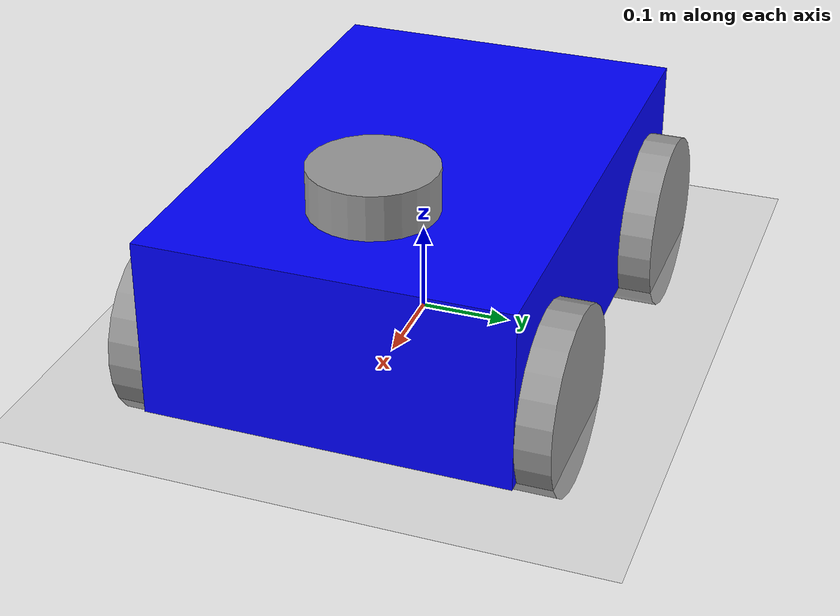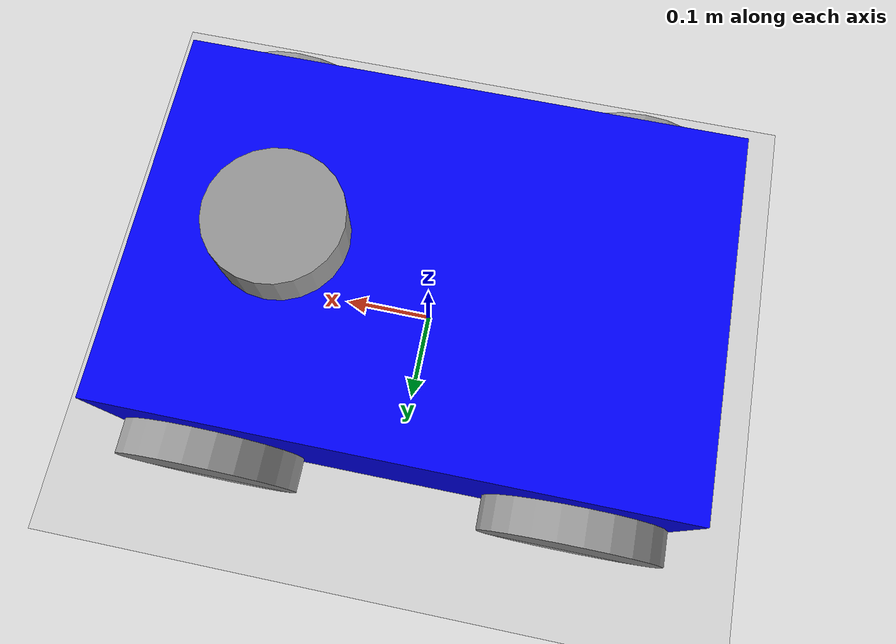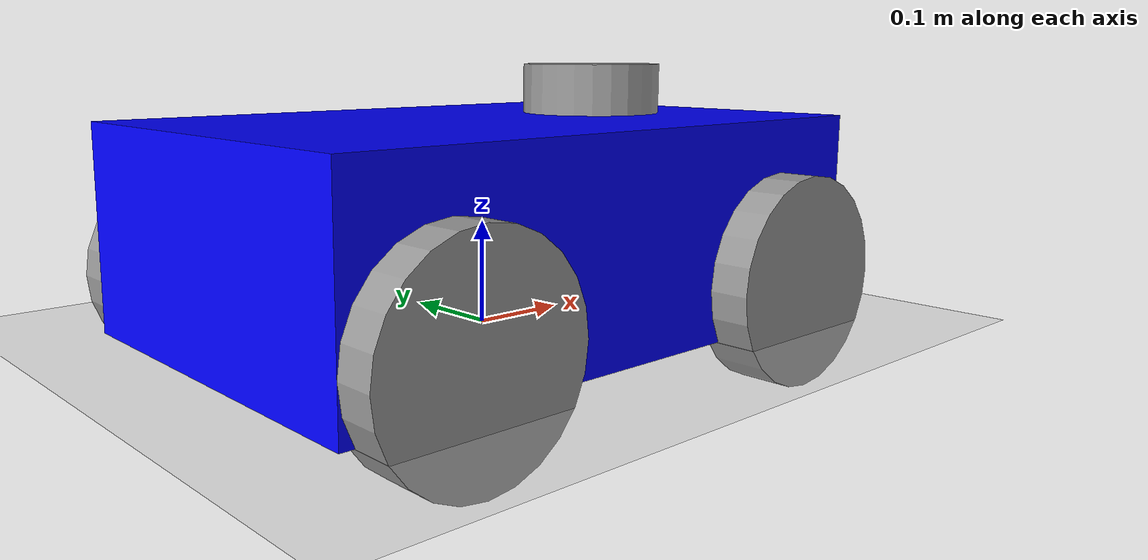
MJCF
<mujoco model="amrModel2">

    <compiler angle="radian" coordinate="local"/>
    <option gravity="0 0 -9.81"/>

    <default>
        <geom rgba="0.6 0.6 0.6 1" friction="1.5 0.2 0.2"/>
        <joint damping="1"/>
    </default>

    <worldbody>
        <geom name="ground" type="plane" size="5 5 0.1" rgba="0.8 0.8 0.8 1"/>
        <!-- Base -->
        <body name="base" pos="0 0 0.1">
            <joint name="base_free" type="free"/>
            <inertial pos="0 0 0" mass="10" diaginertia="0.5 0.5 0.5"/>
            <geom type="box" size="0.3 0.2 0.1" rgba="0 0 1 1" />

            <!-- Lidar -->
            <body name="lidar" pos="0.15 0 0.125">

                <geom type="cylinder" size="0.07 0.025" />
            </body>

            <!-- ================= LEFT SIDE ================= -->

            <!-- Front Left Wheel -->
            <body name="wheel_fl" pos="-0.2 0.2125 -.05">
                <inertial pos="0 0 0" mass="1" diaginertia="0.01 0.01 0.01"/>
                <joint name="joint_fl" type="hinge" axis="0 1 0"/>
                <geom type="cylinder" size="0.1 0.025" euler="1.57 0 0" friction="2 0.1 0.1"/>
            </body>

            <!-- Rear Left Wheel -->
            <body name="wheel_rl" pos="0.2 0.2125 -.05">
                <inertial pos="0 0 0" mass="1" diaginertia="0.01 0.01 0.01"/>
                <joint name="joint_rl" type="hinge" axis="0 1 0"/>
                <geom type="cylinder" size="0.1 0.025" euler="1.57 0 0" friction="2 0.1 0.1"/>
            </body>

            <!-- ================= RIGHT SIDE ================= -->

            <!-- Front Right Wheel -->
            <body name="wheel_fr" pos="-0.2 -0.2125 -.05">
                <inertial pos="0 0 0" mass="1" diaginertia="0.01 0.01 0.01"/>
                <joint name="joint_fr" type="hinge" axis="0 1 0"/>
                <geom type="cylinder" size="0.1 0.025" euler="1.57 0 0" friction="2 0.1 0.1"/>
            </body>

            <!-- Rear Right Wheel -->
            <body name="wheel_rr" pos="0.2 -0.2125 -.05">
                <inertial pos="0 0 0" mass="1" diaginertia="0.01 0.01 0.01"/>
                <joint name="joint_rr" type="hinge" axis="0 1 0"/>
                <geom type="cylinder" size="0.1 0.025" euler="1.57 0 0" friction="2 0.1 0.1"/>
            </body>

        </body>

    </worldbody>

    <!-- Actuators (Differential Drive) -->
    <actuator>
        <!-- Left side -->
        <motor joint="joint_fl" ctrlrange="-50 50" gear="1"/>
        <motor joint="joint_rl" ctrlrange="-50 50" gear="1"/>

        <!-- Right side -->
        <motor joint="joint_fr" ctrlrange="-50 50" gear="1"/>
        <motor joint="joint_rr" ctrlrange="-50 50" gear="1"/>
    </actuator>

</mujoco>
